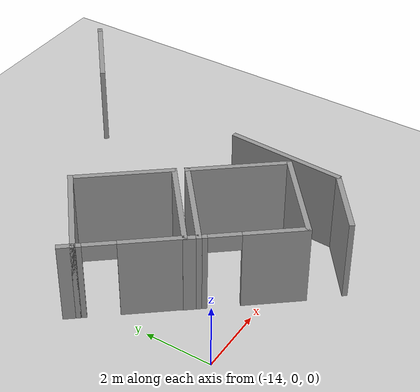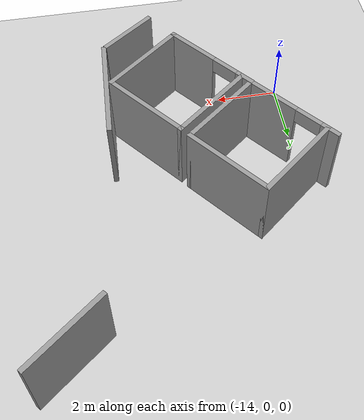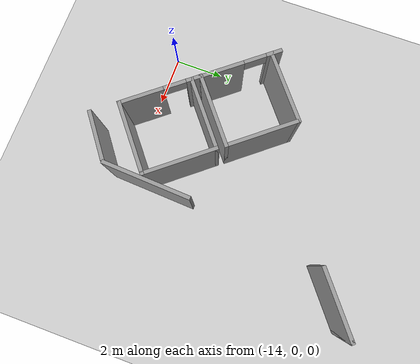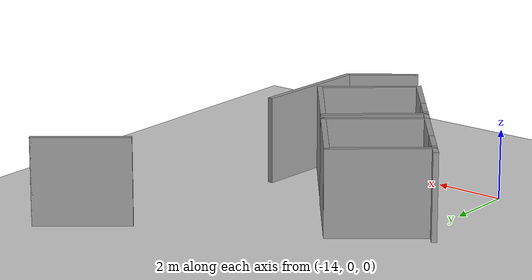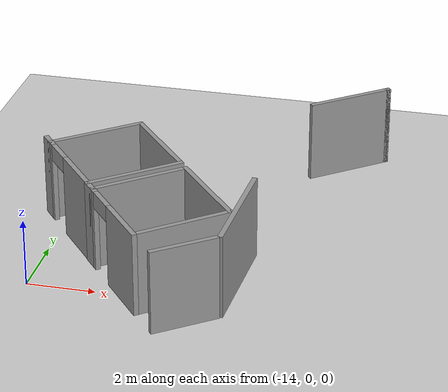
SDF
<sdf version="1.6">
 <world name="default">
  <model name="ground_plane">
   <static>1</static>
   <link name="link">
    <collision name="collision">
     <geometry><plane><normal>0 0 1</normal><size>100 100</size></plane></geometry>
     <surface>
      <contact><collide_bitmask>65535</collide_bitmask></contact>
      <friction><ode><mu>100</mu><mu2>50</mu2></ode></friction>
     </surface>
    </collision>
    <visual name="visual">
     <cast_shadows>0</cast_shadows>
     <geometry><plane><normal>0 0 1</normal><size>100 100</size></plane></geometry>
     <material>
      <script><uri>file://media/materials/scripts/gazebo.material</uri><name>Gazebo/Grey</name></script>
     </material>
    </visual>
   </link>
  </model>
  <model name="wall_6.75">
   <pose>-6.43503 8.95426 0 0 -0 0.672508</pose>
   <link name="Wall_108">
    <collision name="Wall_108_Collision">
     <geometry><box><size>2.75 0.15 2.5</size></box></geometry>
     <pose>0 0 1.25 0 -0 0</pose>
    </collision>
    <visual name="Wall_108_Visual">
     <pose>0 0 1.25 0 -0 0</pose>
     <geometry><box><size>2.75 0.15 2.5</size></box></geometry>
     <material>
      <script><uri>file://media/materials/scripts/gazebo.material</uri><name>Gazebo/Grey</name></script>
      <ambient>1 1 1 1</ambient>
     </material>
     <meta><layer>0</layer></meta>
    </visual>
   </link>
   <link name="Wall_109">
    <collision name="Wall_109_Collision">
     <geometry><box><size>0.15 0.15 2.5</size></box></geometry>
     <pose>0 0 1.25 0 -0 0</pose>
    </collision>
    <visual name="Wall_109_Visual">
     <pose>0 0 1.25 0 -0 0</pose>
     <geometry><box><size>0.15 0.15 2.5</size></box></geometry>
     <material>
      <script><uri>file://media/materials/scripts/gazebo.material</uri><name>Gazebo/Grey</name></script>
      <ambient>0 0 0 1</ambient>
     </material>
     <meta><layer>0</layer></meta>
    </visual>
    <pose>1.3 0 0 0 -0 0</pose>
   </link>
   <static>1</static>
  </model>
  <model name="wall(3.5)">
   <link name="Wall_106">
    <pose>1.09405 -0.024737 0 0 -0 0</pose>
    <inertial>
     <mass>1</mass>
     <inertia><ixx>1</ixx><ixy>0</ixy><ixz>0</ixz><iyy>1</iyy><iyz>0</iyz><izz>1</izz></inertia>
    </inertial>
    <visual name="Wall_106_Visual">
     <pose>0 0 1.25 0 -0 0</pose>
     <geometry><box><size>3.5 0.15 2.5</size></box></geometry>
     <material>
      <script><uri>file://media/materials/scripts/gazebo.material</uri><name>Gazebo/Grey</name></script>
      <ambient>1 1 1 1</ambient>
      <shader type="vertex"><normal_map>__default__</normal_map></shader>
      <diffuse>0.7 0.7 0.7 1</diffuse>
      <specular>0.01 0.01 0.01 1</specular>
      <emissive>0 0 0 1</emissive>
     </material>
     <meta><layer>0</layer></meta>
    </visual>
    <collision name="Wall_106_Collision">
     <pose>0 0 1.25 0 -0 0</pose>
     <geometry><box><size>6.75 0.15 2.5</size></box></geometry>
     <surface>
      <friction>
       <ode><mu>1</mu><mu2>1</mu2><fdir1>0 0 0</fdir1><slip1>0</slip1><slip2>0</slip2></ode>
       <torsional>
        <coefficient>1</coefficient>
        <patch_radius>0</patch_radius>
        <surface_radius>0</surface_radius>
        <use_patch_radius>1</use_patch_radius>
        <ode><slip>0</slip></ode>
       </torsional>
      </friction>
      <bounce><restitution_coefficient>0</restitution_coefficient><threshold>1e+06</threshold></bounce>
      <contact>
       <collide_without_contact>0</collide_without_contact>
       <collide_without_contact_bitmask>1</collide_without_contact_bitmask>
       <collide_bitmask>1</collide_bitmask>
       <ode>
        <soft_cfm>0</soft_cfm>
        <soft_erp>0.2</soft_erp>
        <kp>1e+13</kp>
        <kd>1</kd>
        <max_vel>0.01</max_vel>
        <min_depth>0</min_depth>
       </ode>
       <bullet>
        <split_impulse>1</split_impulse>
        <split_impulse_penetration_threshold>-0.01</split_impulse_penetration_threshold>
        <soft_cfm>0</soft_cfm>
        <soft_erp>0.2</soft_erp>
        <kp>1e+13</kp>
        <kd>1</kd>
       </bullet>
      </contact>
     </surface>
    </collision>
   </link>
   <static>1</static>
   <pose>-8.15154 2.2845 0.050769 0 0 -1.62267</pose>
  </model>
  <model name="wall(2)_clone">
   <link name="Wall_106">
    <pose>0.407329 -0.052672 0 0 -0 0</pose>
    <inertial>
     <mass>1</mass>
     <inertia><ixx>1</ixx><ixy>0</ixy><ixz>0</ixz><iyy>1</iyy><iyz>0</iyz><izz>1</izz></inertia>
    </inertial>
    <visual name="Wall_106_Visual">
     <pose>0 0 1.25 0 -0 0</pose>
     <geometry><box><size>2 0.15 2.5</size></box></geometry>
     <material>
      <script><uri>file://media/materials/scripts/gazebo.material</uri><name>Gazebo/Grey</name></script>
      <ambient>1 1 1 1</ambient>
      <shader type="vertex"><normal_map>__default__</normal_map></shader>
      <diffuse>0.7 0.7 0.7 1</diffuse>
      <specular>0.01 0.01 0.01 1</specular>
      <emissive>0 0 0 1</emissive>
     </material>
     <meta><layer>0</layer></meta>
    </visual>
    <collision name="Wall_106_Collision">
     <pose>0 0 1.25 0 -0 0</pose>
     <geometry><box><size>6.75 0.15 2.5</size></box></geometry>
     <surface>
      <friction>
       <ode><mu>1</mu><mu2>1</mu2><fdir1>0 0 0</fdir1><slip1>0</slip1><slip2>0</slip2></ode>
       <torsional>
        <coefficient>1</coefficient>
        <patch_radius>0</patch_radius>
        <surface_radius>0</surface_radius>
        <use_patch_radius>1</use_patch_radius>
        <ode><slip>0</slip></ode>
       </torsional>
      </friction>
      <bounce><restitution_coefficient>0</restitution_coefficient><threshold>1e+06</threshold></bounce>
      <contact>
       <collide_without_contact>0</collide_without_contact>
       <collide_without_contact_bitmask>1</collide_without_contact_bitmask>
       <collide_bitmask>1</collide_bitmask>
       <ode>
        <soft_cfm>0</soft_cfm>
        <soft_erp>0.2</soft_erp>
        <kp>1e+13</kp>
        <kd>1</kd>
        <max_vel>0.01</max_vel>
        <min_depth>0</min_depth>
       </ode>
       <bullet>
        <split_impulse>1</split_impulse>
        <split_impulse_penetration_threshold>-0.01</split_impulse_penetration_threshold>
        <soft_cfm>0</soft_cfm>
        <soft_erp>0.2</soft_erp>
        <kp>1e+13</kp>
        <kd>1</kd>
       </bullet>
      </contact>
     </surface>
    </collision>
   </link>
   <static>1</static>
   <pose>-8.80347 -0.929722 0.050769 0 0 -2.49723</pose>
  </model>
  <model name="near_tuna_room_clone">
   <pose>-10.5216 1.31535 0 0 0 -0.889073</pose>
   <link name="Wall_20">
    <collision name="Wall_20_Collision">
     <geometry><box><size>0.5 0.15 2.5</size></box></geometry>
     <pose>0 0 1.25 0 -0 0</pose>
    </collision>
    <visual name="Wall_20_Visual">
     <pose>0 0 1.25 0 -0 0</pose>
     <geometry><box><size>0.5 0.15 2.5</size></box></geometry>
     <material>
      <script><uri>file://media/materials/scripts/gazebo.material</uri><name>Gazebo/Grey</name></script>
      <ambient>1 1 1 1</ambient>
     </material>
     <meta><layer>0</layer></meta>
    </visual>
    <pose>-1.425 -1.425 0 0 -0 0</pose>
   </link>
   <link name="Wall_21">
    <collision name="Wall_21_Collision">
     <geometry><box><size>3 0.15 2.5</size></box></geometry>
     <pose>0 0 1.25 0 -0 0</pose>
    </collision>
    <visual name="Wall_21_Visual">
     <pose>0 0 1.25 0 -0 0</pose>
     <geometry><box><size>3 0.15 2.5</size></box></geometry>
     <material>
      <script><uri>file://media/materials/scripts/gazebo.material</uri><name>Gazebo/Grey</name></script>
      <ambient>1 1 1 1</ambient>
     </material>
     <meta><layer>0</layer></meta>
    </visual>
    <pose>-1.25 -0 0 0 -0 1.5708</pose>
   </link>
   <link name="Wall_22">
    <collision name="Wall_22_Collision">
     <geometry><box><size>3 0.15 2.5</size></box></geometry>
     <pose>0 0 1.25 0 -0 0</pose>
    </collision>
    <visual name="Wall_22_Visual">
     <pose>0 0 1.25 0 -0 0</pose>
     <geometry><box><size>3 0.15 2.5</size></box></geometry>
     <material>
      <script><uri>file://media/materials/scripts/gazebo.material</uri><name>Gazebo/Grey</name></script>
      <ambient>1 1 1 1</ambient>
     </material>
     <meta><layer>0</layer></meta>
    </visual>
    <pose>0.175 1.425 0 0 -0 0</pose>
   </link>
   <link name="Wall_23">
    <collision name="Wall_23_Collision">
     <geometry><box><size>3 0.15 2.5</size></box></geometry>
     <pose>0 0 1.25 0 -0 0</pose>
    </collision>
    <visual name="Wall_23_Visual">
     <pose>0 0 1.25 0 -0 0</pose>
     <geometry><box><size>3 0.15 2.5</size></box></geometry>
     <material>
      <script><uri>file://media/materials/scripts/gazebo.material</uri><name>Gazebo/Grey</name></script>
      <ambient>1 1 1 1</ambient>
     </material>
     <meta><layer>0</layer></meta>
    </visual>
    <pose>1.6 -0 0 0 -0 -1.5708</pose>
   </link>
   <link name="Wall_24">
    <pose>0.175 -1.425 0 0 -0 3.14159</pose>
    <visual name="Wall_24_Visual_0">
     <pose>-0.5975 0 1.25 0 -0 0</pose>
     <geometry><box><size>1.805 0.15 2.5</size></box></geometry>
     <material>
      <script><uri>file://media/materials/scripts/gazebo.material</uri><name>Gazebo/Grey</name></script>
      <ambient>1 1 1 1</ambient>
     </material>
     <meta><layer>0</layer></meta>
    </visual>
    <collision name="Wall_24_Collision_0">
     <geometry><box><size>1.805 0.15 2.5</size></box></geometry>
     <pose>-0.5975 0 1.25 0 -0 0</pose>
    </collision>
    <visual name="Wall_24_Visual_1">
     <pose>1.3525 0 1.25 0 -0 0</pose>
     <geometry><box><size>0.295 0.15 2.5</size></box></geometry>
     <material>
      <script><uri>file://media/materials/scripts/gazebo.material</uri><name>Gazebo/Grey</name></script>
      <ambient>1 1 1 1</ambient>
     </material>
     <meta><layer>0</layer></meta>
    </visual>
    <collision name="Wall_24_Collision_1">
     <geometry><box><size>0.295 0.15 2.5</size></box></geometry>
     <pose>1.3525 0 1.25 0 -0 0</pose>
    </collision>
    <visual name="Wall_24_Visual_2">
     <pose>0.755 0 2.25 0 -0 0</pose>
     <geometry><box><size>0.9 0.15 0.5</size></box></geometry>
     <material>
      <script><uri>file://media/materials/scripts/gazebo.material</uri><name>Gazebo/Grey</name></script>
      <ambient>1 1 1 1</ambient>
     </material>
     <meta><layer>0</layer></meta>
    </visual>
    <collision name="Wall_24_Collision_2">
     <geometry><box><size>0.9 0.15 0.5</size></box></geometry>
     <pose>0.755 0 2.25 0 -0 0</pose>
    </collision>
   </link>
   <static>1</static>
  </model>
  <model name="near_tuna_room_clone_clone">
   <pose>-12.5383 3.82224 0 0 0 -0.889073</pose>
   <link name="Wall_20">
    <collision name="Wall_20_Collision">
     <geometry><box><size>0.5 0.15 2.5</size></box></geometry>
     <pose>0 0 1.25 0 -0 0</pose>
    </collision>
    <visual name="Wall_20_Visual">
     <pose>0 0 1.25 0 -0 0</pose>
     <geometry><box><size>0.5 0.15 2.5</size></box></geometry>
     <material>
      <script><uri>file://media/materials/scripts/gazebo.material</uri><name>Gazebo/Grey</name></script>
      <ambient>1 1 1 1</ambient>
     </material>
     <meta><layer>0</layer></meta>
    </visual>
    <pose>-1.425 -1.425 0 0 -0 0</pose>
   </link>
   <link name="Wall_21">
    <collision name="Wall_21_Collision">
     <geometry><box><size>3 0.15 2.5</size></box></geometry>
     <pose>0 0 1.25 0 -0 0</pose>
    </collision>
    <visual name="Wall_21_Visual">
     <pose>0 0 1.25 0 -0 0</pose>
     <geometry><box><size>3 0.15 2.5</size></box></geometry>
     <material>
      <script><uri>file://media/materials/scripts/gazebo.material</uri><name>Gazebo/Grey</name></script>
      <ambient>1 1 1 1</ambient>
     </material>
     <meta><layer>0</layer></meta>
    </visual>
    <pose>-1.25 -0 0 0 -0 1.5708</pose>
   </link>
   <link name="Wall_22">
    <collision name="Wall_22_Collision">
     <geometry><box><size>3 0.15 2.5</size></box></geometry>
     <pose>0 0 1.25 0 -0 0</pose>
    </collision>
    <visual name="Wall_22_Visual">
     <pose>0 0 1.25 0 -0 0</pose>
     <geometry><box><size>3 0.15 2.5</size></box></geometry>
     <material>
      <script><uri>file://media/materials/scripts/gazebo.material</uri><name>Gazebo/Grey</name></script>
      <ambient>1 1 1 1</ambient>
     </material>
     <meta><layer>0</layer></meta>
    </visual>
    <pose>0.175 1.425 0 0 -0 0</pose>
   </link>
   <link name="Wall_23">
    <collision name="Wall_23_Collision">
     <geometry><box><size>3 0.15 2.5</size></box></geometry>
     <pose>0 0 1.25 0 -0 0</pose>
    </collision>
    <visual name="Wall_23_Visual">
     <pose>0 0 1.25 0 -0 0</pose>
     <geometry><box><size>3 0.15 2.5</size></box></geometry>
     <material>
      <script><uri>file://media/materials/scripts/gazebo.material</uri><name>Gazebo/Grey</name></script>
      <ambient>1 1 1 1</ambient>
     </material>
     <meta><layer>0</layer></meta>
    </visual>
    <pose>1.6 -0 0 0 -0 -1.5708</pose>
   </link>
   <link name="Wall_24">
    <pose>0.175 -1.425 0 0 -0 3.14159</pose>
    <visual name="Wall_24_Visual_0">
     <pose>-0.5975 0 1.25 0 -0 0</pose>
     <geometry><box><size>1.805 0.15 2.5</size></box></geometry>
     <material>
      <script><uri>file://media/materials/scripts/gazebo.material</uri><name>Gazebo/Grey</name></script>
      <ambient>1 1 1 1</ambient>
     </material>
     <meta><layer>0</layer></meta>
    </visual>
    <collision name="Wall_24_Collision_0">
     <geometry><box><size>1.805 0.15 2.5</size></box></geometry>
     <pose>-0.5975 0 1.25 0 -0 0</pose>
    </collision>
    <visual name="Wall_24_Visual_1">
     <pose>1.3525 0 1.25 0 -0 0</pose>
     <geometry><box><size>0.295 0.15 2.5</size></box></geometry>
     <material>
      <script><uri>file://media/materials/scripts/gazebo.material</uri><name>Gazebo/Grey</name></script>
      <ambient>1 1 1 1</ambient>
     </material>
     <meta><layer>0</layer></meta>
    </visual>
    <collision name="Wall_24_Collision_1">
     <geometry><box><size>0.295 0.15 2.5</size></box></geometry>
     <pose>1.3525 0 1.25 0 -0 0</pose>
    </collision>
    <visual name="Wall_24_Visual_2">
     <pose>0.755 0 2.25 0 -0 0</pose>
     <geometry><box><size>0.9 0.15 0.5</size></box></geometry>
     <material>
      <script><uri>file://media/materials/scripts/gazebo.material</uri><name>Gazebo/Grey</name></script>
      <ambient>1 1 1 1</ambient>
     </material>
     <meta><layer>0</layer></meta>
    </visual>
    <collision name="Wall_24_Collision_2">
     <geometry><box><size>0.9 0.15 0.5</size></box></geometry>
     <pose>0.755 0 2.25 0 -0 0</pose>
    </collision>
   </link>
   <static>1</static>
  </model>
 </world>
</sdf>
